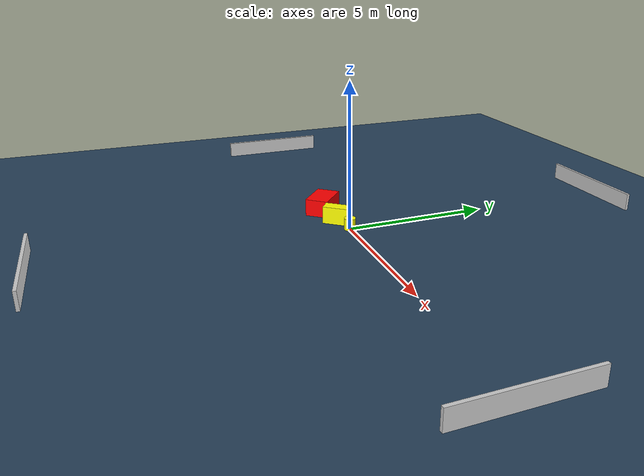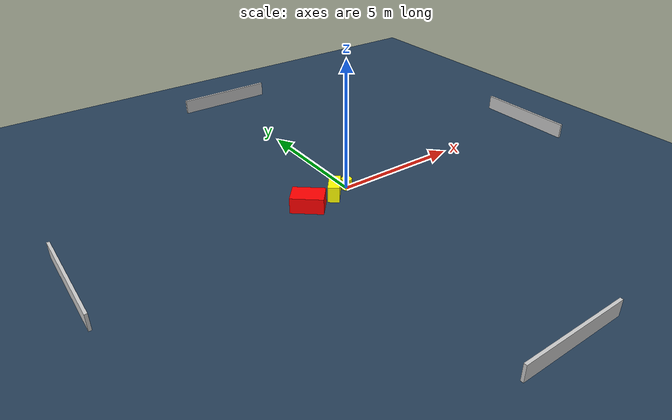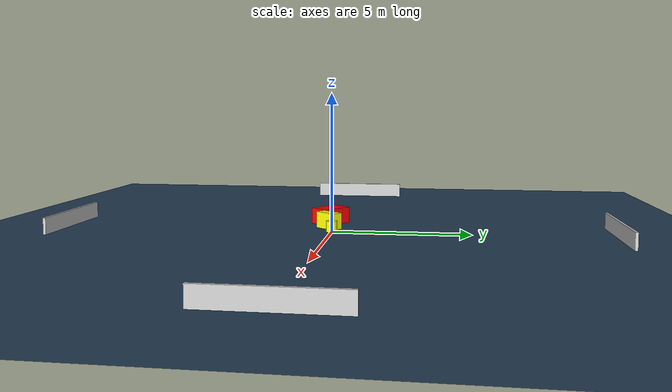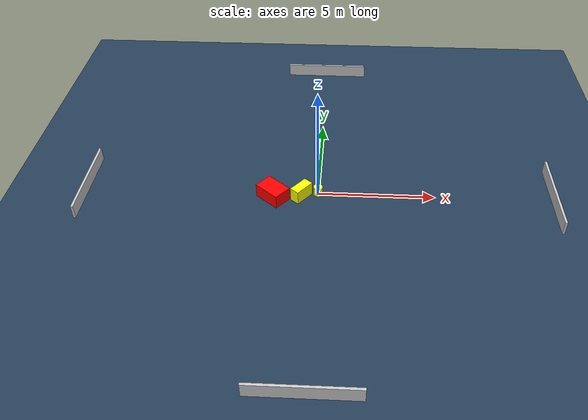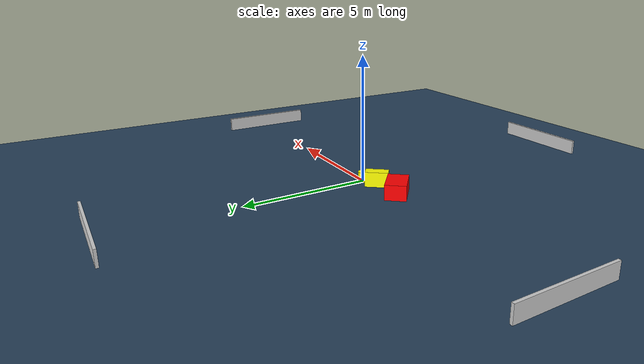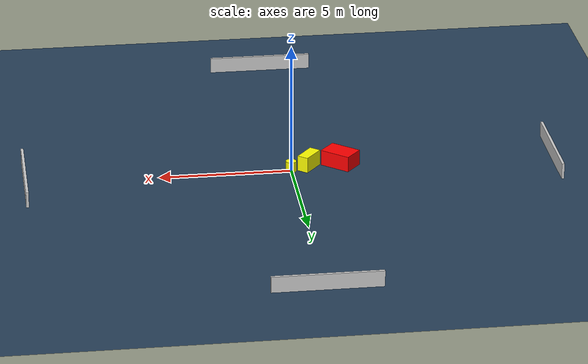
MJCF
<?xml version="1.0" ?>
<mujoco model="generated_environment">
  <option timestep="0.01" integrator="RK4" cone="elliptic"/>
  <default>
    <geom density="1"/>
  </default>
  <asset>
    <texture builtin="gradient" height="3072" name="skybox" rgb1="0.3 0.5 0.7" rgb2="0 0 0" type="skybox" width="512"/>
    <texture builtin="checker" height="300" name="groundplane" rgb1="0.2 0.3 0.4" rgb2="0.1 0.2 0.3" type="2d" width="300"/>
    <material name="groundplane" reflectance="0.2" texrepeat="5 5" texture="groundplane"/>
  </asset>
  <worldbody>
    <light dir="0 0 -1" directional="true" pos="0 0 1.5"/>
    <geom condim="3" friction="0.5 0.005 0.001" material="groundplane" name="floor" pos="0 0 0" size="0 0 0.05" type="plane"/>
    <body name="walls">
      <geom name="wall_1" condim="4" pos="-10.0 0.0 0.3" rgba="0.800000011920929 0.800000011920929 0.800000011920929 1.0" size="0.05 2.0 0.3" type="box"/>
      <geom name="wall_2" condim="4" pos="10.0 0.0 0.3" rgba="0.800000011920929 0.800000011920929 0.800000011920929 1.0" size="0.05 2.0 0.3" type="box"/>
      <geom name="wall_3" condim="4" pos="0.0 -10.0 0.3" rgba="0.800000011920929 0.800000011920929 0.800000011920929 1.0" size="2.0 0.05 0.3" type="box"/>
      <geom name="wall_4" condim="4" pos="0.0 10.0 0.3" rgba="0.800000011920929 0.800000011920929 0.800000011920929 1.0" size="2.0 0.05 0.3" type="box"/>
    </body>
    <body name="robot">
      <joint name="joint_x" type="slide" pos="0 0 0" axis="1 0 0"/>
      <joint name="joint_y" type="slide" pos="0 0 0" axis="0 1 0"/>
      <geom name="robot" type="cylinder" pos="0.0 0.0 0.2" size="0.2 0.2 0.0" mass="5.0" friction="1.0 0.005 0.0001" condim="4" rgba="1.0 1.0 0.0 1.0"/>
    </body>
    <body name="obstacle_1_movable">
      <geom name="obstacle_1_movable" condim="4" pos="-0.7014659174762533 -0.20626344552395193 0.3" euler="0 0 321.1092662775598" friction="0.0 0.005 0.001" rgba="1.0 1.0 0.0 1.0" size="0.21307542534025295 0.4524294163046173 0.3" type="box" mass="0.1"/>
      <joint type="free"/>
    </body>
    <body name="obstacle_2_static">
      <geom name="obstacle_2_static" condim="4" pos="-1.9110724502014886 -0.3114207615573597 0.3" euler="0 0 139.84594716148473" friction="0.0 0.005 0.001" rgba="1.0 0.0 0.0 1.0" size="0.6044161579346068 0.4085887925901195 0.3" type="box"/>
    </body>
  </worldbody>
  <actuator>
    <motor name="actuator_x" joint="joint_x" gear="1" ctrlrange="-1 1"/>
    <motor name="actuator_y" joint="joint_y" gear="1" ctrlrange="-1 1"/>
  </actuator>
</mujoco>
